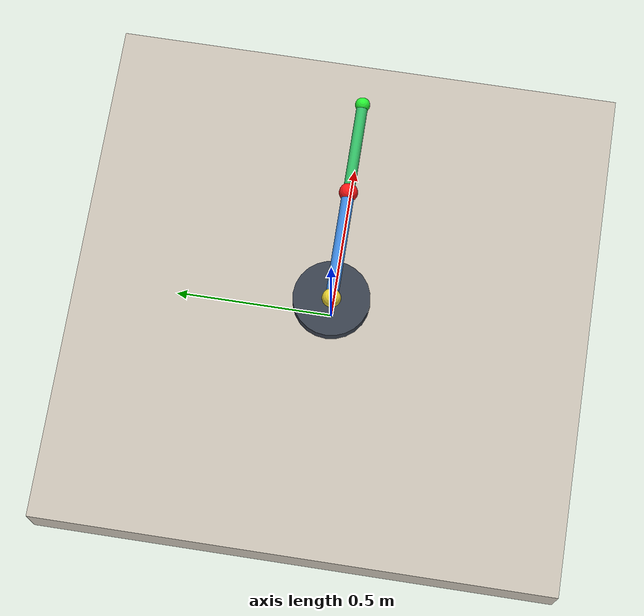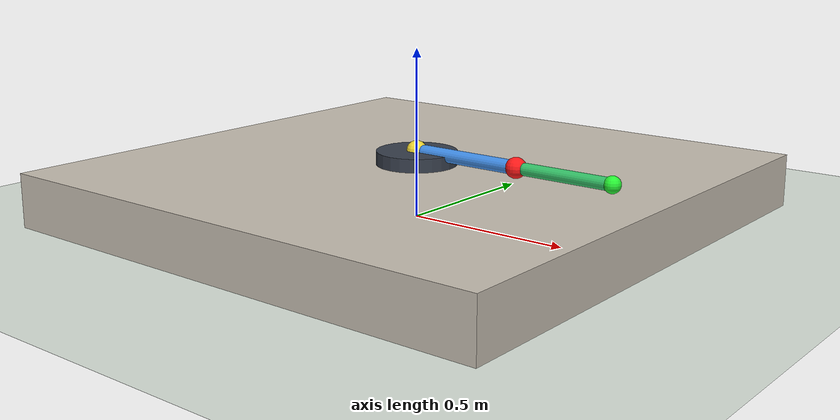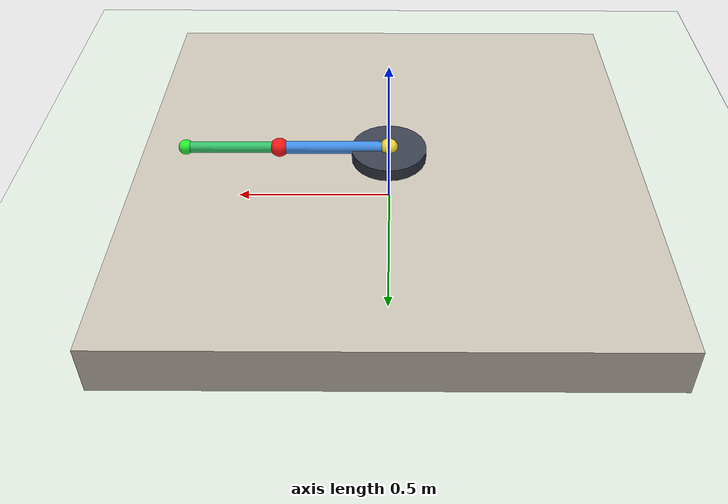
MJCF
<!-- Task-2/src/environment/assets/simple_manipulator.xml -->
<mujoco model="simple_manipulator_planar">
  <compiler angle="degree" inertiafromgeom="true"/>
  <option timestep="0.002" gravity="0 0 0"/>

  <default>
    <joint limited="true" damping="6.0" armature="0.05" frictionloss="0.3"/>
    <geom density="900" friction="0.8 0.05 0.01" condim="3"/>
    <motor ctrllimited="true" ctrlrange="-1 1"/>
  </default>

  <worldbody>
    <light name="sun" pos="0 0 2.5" dir="0 0 -1" diffuse="0.9 0.9 0.9"/>
    <light name="fill" pos="1.6 -1.0 1.2" dir="-1 1 -0.4" diffuse="0.4 0.4 0.4"/>
    <camera name="overview" pos="1.3 -1.3 1.1" euler="55 0 45"/>

    <geom name="floor" type="plane" pos="0 0 0" size="2 2 0.1" rgba="0.86 0.9 0.86 1"/>
    <geom name="table" type="box" pos="0 0 0.08" size="0.8 0.8 0.08" rgba="0.78 0.75 0.70 1"/>

    <body name="base_platform" pos="0 0 0.16">
      <geom name="base_geom" type="cylinder" size="0.12 0.04" rgba="0.22 0.25 0.30 1"/>
      <geom name="base_joint_vis" type="sphere" pos="0 0 0.04" size="0.03" rgba="0.95 0.85 0.2 1"/>

      <body name="yaw_body" pos="0 0 0.04">
        <joint name="base_yaw" type="hinge" axis="0 0 1" range="-180 180"/>
        <geom name="shoulder_joint_vis" type="sphere" size="0.028" rgba="0.95 0.95 0.3 1"/>

        <body name="link1_body" pos="0 0 0">
          <joint name="shoulder" type="hinge" axis="0 0 1" range="-170 170"/>
          <geom name="link1_geom" type="capsule" fromto="0.03 0 0 0.35 0 0" size="0.02" rgba="0.25 0.55 0.9 1"/>

          <body name="elbow_body" pos="0.35 0 0">
            <joint name="elbow" type="hinge" axis="0 0 1" range="-170 170"/>
            <geom name="elbow_joint_vis" type="sphere" size="0.026" rgba="0.3 0.95 0.95 1"/>
            <geom name="link2_geom" type="capsule" fromto="0.03 0 0 0.30 0 0" size="0.018" rgba="0.2 0.75 0.4 1"/>

            <body name="ee" pos="0.30 0 0">
              <geom name="ee_geom" type="sphere" size="0.024" rgba="0.15 0.95 0.2 1"/>
            </body>
          </body>
        </body>
      </body>
    </body>

    <body name="ball" pos="0.35 0.00 0.20">
      <geom name="ball_geom" type="sphere" size="0.03" rgba="1 0.1 0.1 1" contype="0" conaffinity="0"/>
    </body>
  </worldbody>

  <actuator>
    <motor name="motor_base_yaw" joint="base_yaw" gear="5"/>
    <motor name="motor_shoulder" joint="shoulder" gear="5"/>
    <motor name="motor_elbow" joint="elbow" gear="4"/>
  </actuator>
</mujoco>
